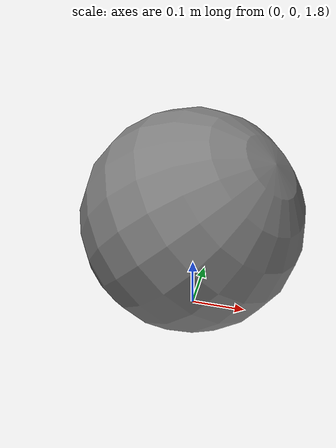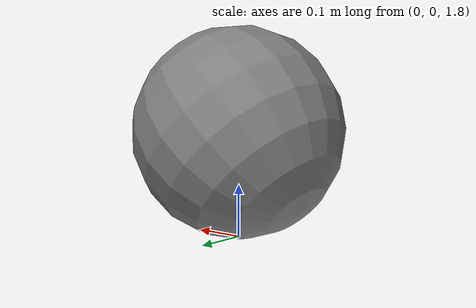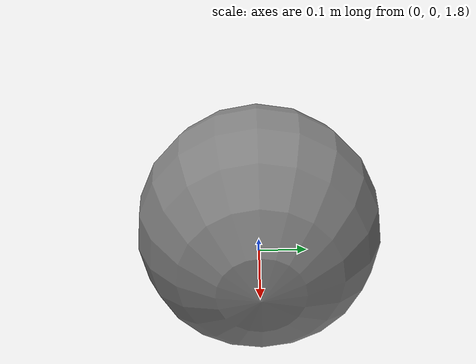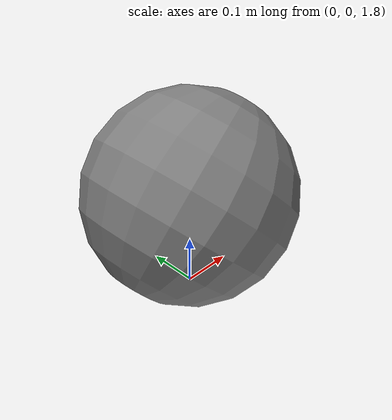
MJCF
<mujoco model="fluid-box">
  <custom>
    <numeric data="20" name="matrix_inv_iterations"/>
    <numeric data="15" name="solver_maxls"/>
  </custom>
  <option timestep="0.001" density="1.2" viscosity="0.15" gravity="0 0 0"/>
  <worldbody>
    <!-- offset the body pos/rot for testing -->
    <body name="body1" pos="0.0 0.0 2.0" euler="0 45 0">
      <inertial pos="0 0.0 0" mass="1" diaginertia="1.1 0.9 1."/>
      <joint axis="1 0 0" name="free3" pos="0 0 0" type="free"/>
      <geom name="sphere" size="0.2" type="sphere"/>
    </body>
  </worldbody>
</mujoco>
